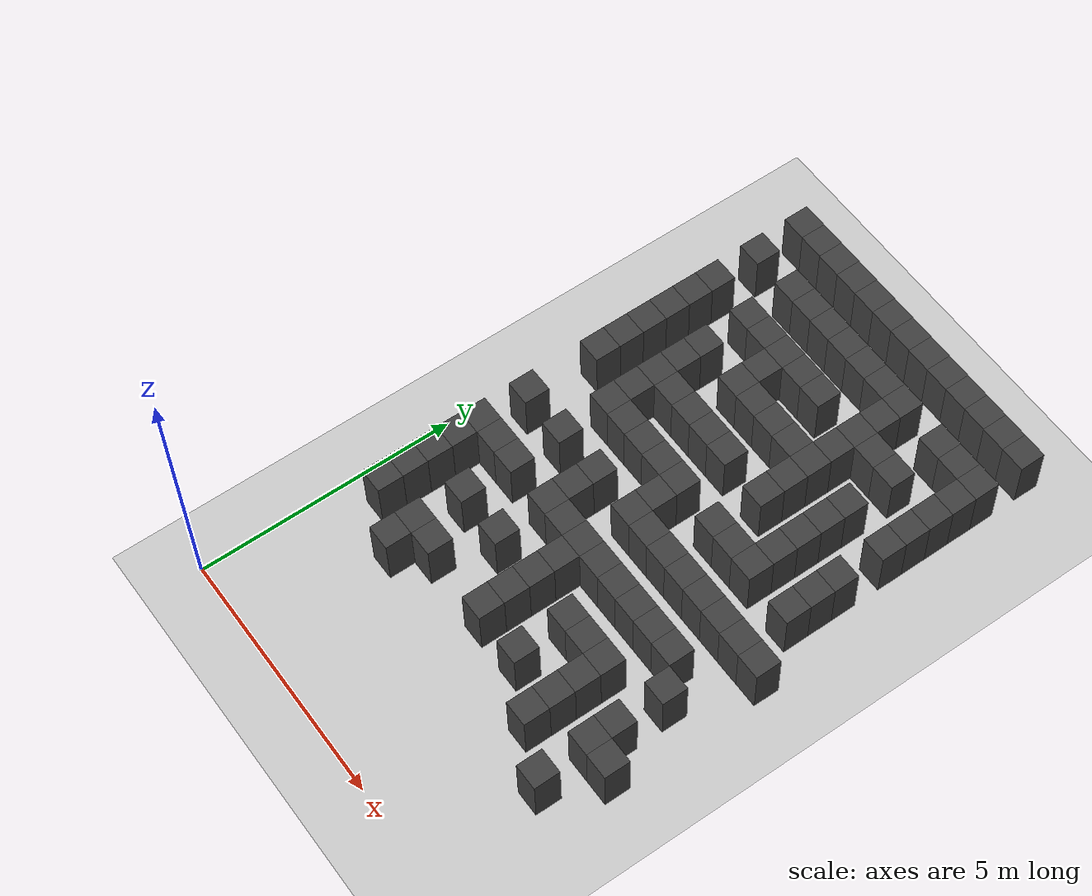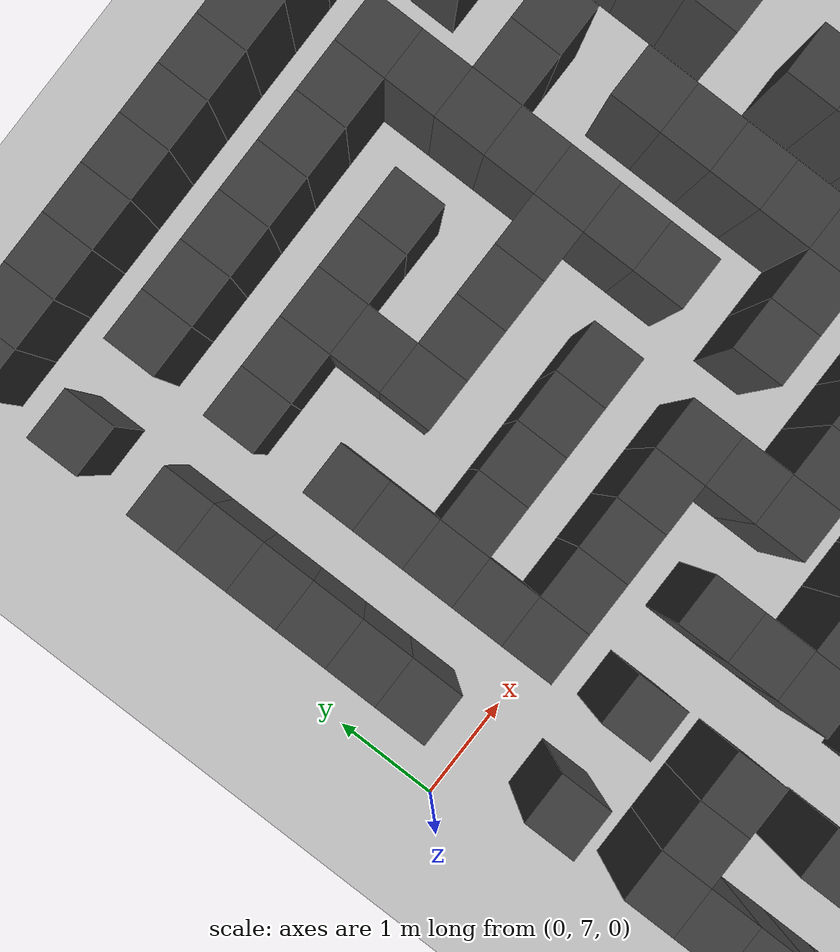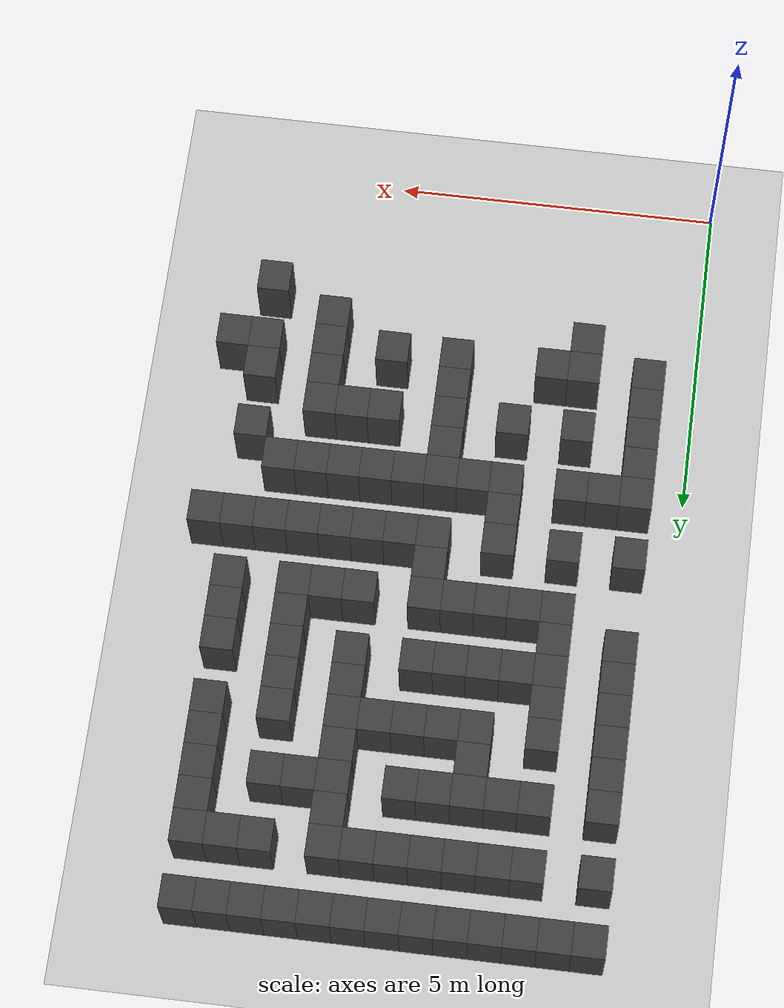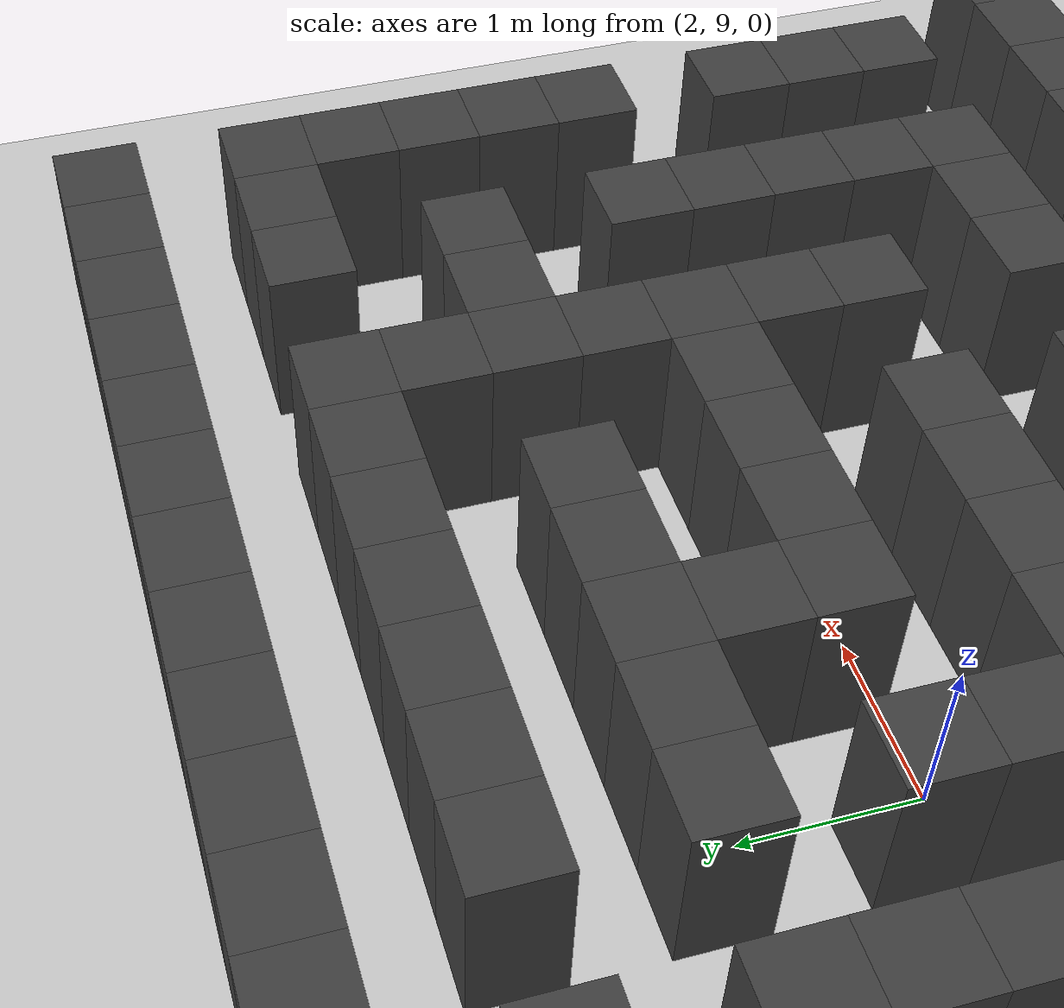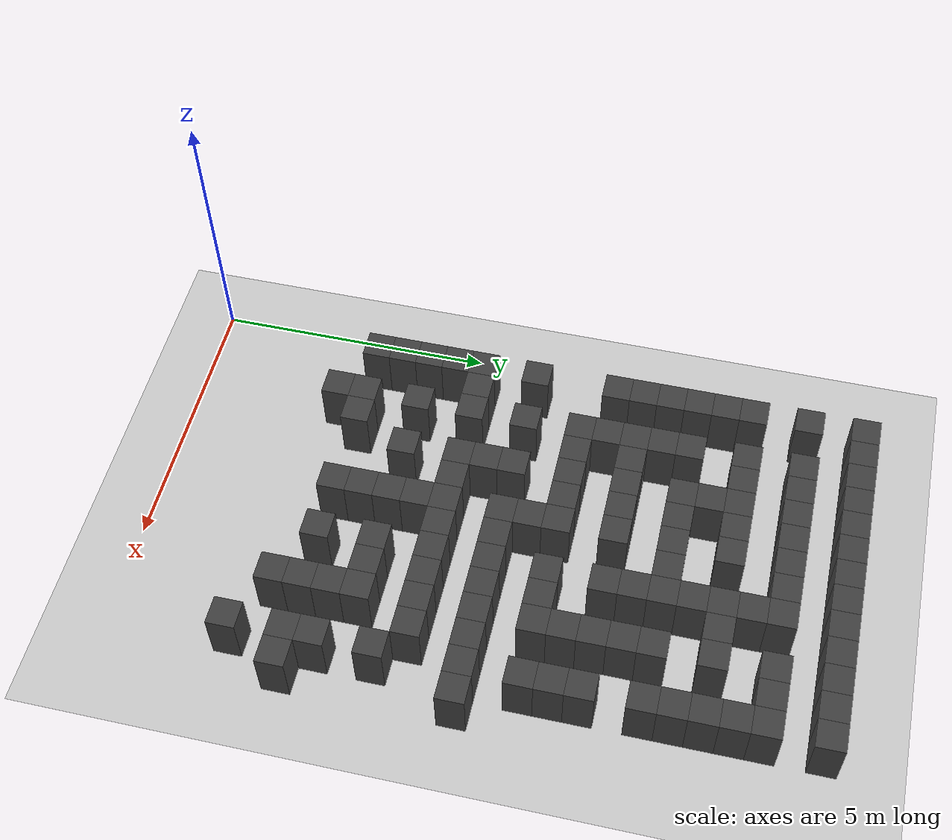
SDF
<sdf version="1.7">
 <world name="map_16271">
  <model name="ground_plane">
   <static>true</static>
   <link name="link">
    <collision name="collision">
     <geometry><plane><normal>0 0 1</normal><size>200 200</size></plane></geometry>
    </collision>
    <visual name="visual">
     <geometry><plane><normal>0 0 1</normal><size>200 200</size></plane></geometry>
     <material><ambient>0.8 0.8 0.8 1</ambient><diffuse>0.8 0.8 0.8 1</diffuse></material>
    </visual>
   </link>
  </model>
  <model name="maze_environment">
   <static>true</static>
   <link name="wall_26">
    <pose>0.750 12.250 0.500 0 0 0</pose>
    <collision name="col"><geometry><box><size>0.5 0.5 1.0</size></box></geometry></collision>
    <visual name="vis">
     <geometry><box><size>0.5 0.5 1.0</size></box></geometry>
     <material><ambient>0.15 0.15 0.15 1</ambient><diffuse>0.25 0.25 0.25 1</diffuse></material>
    </visual>
   </link>
   <link name="wall_27">
    <pose>1.250 12.250 0.500 0 0 0</pose>
    <collision name="col"><geometry><box><size>0.5 0.5 1.0</size></box></geometry></collision>
    <visual name="vis">
     <geometry><box><size>0.5 0.5 1.0</size></box></geometry>
     <material><ambient>0.15 0.15 0.15 1</ambient><diffuse>0.25 0.25 0.25 1</diffuse></material>
    </visual>
   </link>
   <link name="wall_28">
    <pose>1.750 12.250 0.500 0 0 0</pose>
    <collision name="col"><geometry><box><size>0.5 0.5 1.0</size></box></geometry></collision>
    <visual name="vis">
     <geometry><box><size>0.5 0.5 1.0</size></box></geometry>
     <material><ambient>0.15 0.15 0.15 1</ambient><diffuse>0.25 0.25 0.25 1</diffuse></material>
    </visual>
   </link>
   <link name="wall_29">
    <pose>2.250 12.250 0.500 0 0 0</pose>
    <collision name="col"><geometry><box><size>0.5 0.5 1.0</size></box></geometry></collision>
    <visual name="vis">
     <geometry><box><size>0.5 0.5 1.0</size></box></geometry>
     <material><ambient>0.15 0.15 0.15 1</ambient><diffuse>0.25 0.25 0.25 1</diffuse></material>
    </visual>
   </link>
   <link name="wall_30">
    <pose>2.750 12.250 0.500 0 0 0</pose>
    <collision name="col"><geometry><box><size>0.5 0.5 1.0</size></box></geometry></collision>
    <visual name="vis">
     <geometry><box><size>0.5 0.5 1.0</size></box></geometry>
     <material><ambient>0.15 0.15 0.15 1</ambient><diffuse>0.25 0.25 0.25 1</diffuse></material>
    </visual>
   </link>
   <link name="wall_31">
    <pose>3.250 12.250 0.500 0 0 0</pose>
    <collision name="col"><geometry><box><size>0.5 0.5 1.0</size></box></geometry></collision>
    <visual name="vis">
     <geometry><box><size>0.5 0.5 1.0</size></box></geometry>
     <material><ambient>0.15 0.15 0.15 1</ambient><diffuse>0.25 0.25 0.25 1</diffuse></material>
    </visual>
   </link>
   <link name="wall_32">
    <pose>3.750 12.250 0.500 0 0 0</pose>
    <collision name="col"><geometry><box><size>0.5 0.5 1.0</size></box></geometry></collision>
    <visual name="vis">
     <geometry><box><size>0.5 0.5 1.0</size></box></geometry>
     <material><ambient>0.15 0.15 0.15 1</ambient><diffuse>0.25 0.25 0.25 1</diffuse></material>
    </visual>
   </link>
   <link name="wall_33">
    <pose>4.250 12.250 0.500 0 0 0</pose>
    <collision name="col"><geometry><box><size>0.5 0.5 1.0</size></box></geometry></collision>
    <visual name="vis">
     <geometry><box><size>0.5 0.5 1.0</size></box></geometry>
     <material><ambient>0.15 0.15 0.15 1</ambient><diffuse>0.25 0.25 0.25 1</diffuse></material>
    </visual>
   </link>
   <link name="wall_34">
    <pose>4.750 12.250 0.500 0 0 0</pose>
    <collision name="col"><geometry><box><size>0.5 0.5 1.0</size></box></geometry></collision>
    <visual name="vis">
     <geometry><box><size>0.5 0.5 1.0</size></box></geometry>
     <material><ambient>0.15 0.15 0.15 1</ambient><diffuse>0.25 0.25 0.25 1</diffuse></material>
    </visual>
   </link>
   <link name="wall_35">
    <pose>5.250 12.250 0.500 0 0 0</pose>
    <collision name="col"><geometry><box><size>0.5 0.5 1.0</size></box></geometry></collision>
    <visual name="vis">
     <geometry><box><size>0.5 0.5 1.0</size></box></geometry>
     <material><ambient>0.15 0.15 0.15 1</ambient><diffuse>0.25 0.25 0.25 1</diffuse></material>
    </visual>
   </link>
   <link name="wall_36">
    <pose>5.750 12.250 0.500 0 0 0</pose>
    <collision name="col"><geometry><box><size>0.5 0.5 1.0</size></box></geometry></collision>
    <visual name="vis">
     <geometry><box><size>0.5 0.5 1.0</size></box></geometry>
     <material><ambient>0.15 0.15 0.15 1</ambient><diffuse>0.25 0.25 0.25 1</diffuse></material>
    </visual>
   </link>
   <link name="wall_37">
    <pose>6.250 12.250 0.500 0 0 0</pose>
    <collision name="col"><geometry><box><size>0.5 0.5 1.0</size></box></geometry></collision>
    <visual name="vis">
     <geometry><box><size>0.5 0.5 1.0</size></box></geometry>
     <material><ambient>0.15 0.15 0.15 1</ambient><diffuse>0.25 0.25 0.25 1</diffuse></material>
    </visual>
   </link>
   <link name="wall_38">
    <pose>6.750 12.250 0.500 0 0 0</pose>
    <collision name="col"><geometry><box><size>0.5 0.5 1.0</size></box></geometry></collision>
    <visual name="vis">
     <geometry><box><size>0.5 0.5 1.0</size></box></geometry>
     <material><ambient>0.15 0.15 0.15 1</ambient><diffuse>0.25 0.25 0.25 1</diffuse></material>
    </visual>
   </link>
   <link name="wall_77">
    <pose>0.750 11.250 0.500 0 0 0</pose>
    <collision name="col"><geometry><box><size>0.5 0.5 1.0</size></box></geometry></collision>
    <visual name="vis">
     <geometry><box><size>0.5 0.5 1.0</size></box></geometry>
     <material><ambient>0.15 0.15 0.15 1</ambient><diffuse>0.25 0.25 0.25 1</diffuse></material>
    </visual>
   </link>
   <link name="wall_78">
    <pose>1.750 11.250 0.500 0 0 0</pose>
    <collision name="col"><geometry><box><size>0.5 0.5 1.0</size></box></geometry></collision>
    <visual name="vis">
     <geometry><box><size>0.5 0.5 1.0</size></box></geometry>
     <material><ambient>0.15 0.15 0.15 1</ambient><diffuse>0.25 0.25 0.25 1</diffuse></material>
    </visual>
   </link>
   <link name="wall_79">
    <pose>2.250 11.250 0.500 0 0 0</pose>
    <collision name="col"><geometry><box><size>0.5 0.5 1.0</size></box></geometry></collision>
    <visual name="vis">
     <geometry><box><size>0.5 0.5 1.0</size></box></geometry>
     <material><ambient>0.15 0.15 0.15 1</ambient><diffuse>0.25 0.25 0.25 1</diffuse></material>
    </visual>
   </link>
   <link name="wall_80">
    <pose>2.750 11.250 0.500 0 0 0</pose>
    <collision name="col"><geometry><box><size>0.5 0.5 1.0</size></box></geometry></collision>
    <visual name="vis">
     <geometry><box><size>0.5 0.5 1.0</size></box></geometry>
     <material><ambient>0.15 0.15 0.15 1</ambient><diffuse>0.25 0.25 0.25 1</diffuse></material>
    </visual>
   </link>
   <link name="wall_81">
    <pose>3.250 11.250 0.500 0 0 0</pose>
    <collision name="col"><geometry><box><size>0.5 0.5 1.0</size></box></geometry></collision>
    <visual name="vis">
     <geometry><box><size>0.5 0.5 1.0</size></box></geometry>
     <material><ambient>0.15 0.15 0.15 1</ambient><diffuse>0.25 0.25 0.25 1</diffuse></material>
    </visual>
   </link>
   <link name="wall_82">
    <pose>3.750 11.250 0.500 0 0 0</pose>
    <collision name="col"><geometry><box><size>0.5 0.5 1.0</size></box></geometry></collision>
    <visual name="vis">
     <geometry><box><size>0.5 0.5 1.0</size></box></geometry>
     <material><ambient>0.15 0.15 0.15 1</ambient><diffuse>0.25 0.25 0.25 1</diffuse></material>
    </visual>
   </link>
   <link name="wall_83">
    <pose>4.250 11.250 0.500 0 0 0</pose>
    <collision name="col"><geometry><box><size>0.5 0.5 1.0</size></box></geometry></collision>
    <visual name="vis">
     <geometry><box><size>0.5 0.5 1.0</size></box></geometry>
     <material><ambient>0.15 0.15 0.15 1</ambient><diffuse>0.25 0.25 0.25 1</diffuse></material>
    </visual>
   </link>
   <link name="wall_84">
    <pose>4.750 11.250 0.500 0 0 0</pose>
    <collision name="col"><geometry><box><size>0.5 0.5 1.0</size></box></geometry></collision>
    <visual name="vis">
     <geometry><box><size>0.5 0.5 1.0</size></box></geometry>
     <material><ambient>0.15 0.15 0.15 1</ambient><diffuse>0.25 0.25 0.25 1</diffuse></material>
    </visual>
   </link>
   <link name="wall_85">
    <pose>5.750 11.250 0.500 0 0 0</pose>
    <collision name="col"><geometry><box><size>0.5 0.5 1.0</size></box></geometry></collision>
    <visual name="vis">
     <geometry><box><size>0.5 0.5 1.0</size></box></geometry>
     <material><ambient>0.15 0.15 0.15 1</ambient><diffuse>0.25 0.25 0.25 1</diffuse></material>
    </visual>
   </link>
   <link name="wall_86">
    <pose>6.250 11.250 0.500 0 0 0</pose>
    <collision name="col"><geometry><box><size>0.5 0.5 1.0</size></box></geometry></collision>
    <visual name="vis">
     <geometry><box><size>0.5 0.5 1.0</size></box></geometry>
     <material><ambient>0.15 0.15 0.15 1</ambient><diffuse>0.25 0.25 0.25 1</diffuse></material>
    </visual>
   </link>
   <link name="wall_87">
    <pose>6.750 11.250 0.500 0 0 0</pose>
    <collision name="col"><geometry><box><size>0.5 0.5 1.0</size></box></geometry></collision>
    <visual name="vis">
     <geometry><box><size>0.5 0.5 1.0</size></box></geometry>
     <material><ambient>0.15 0.15 0.15 1</ambient><diffuse>0.25 0.25 0.25 1</diffuse></material>
    </visual>
   </link>
   <link name="wall_100">
    <pose>4.750 10.750 0.500 0 0 0</pose>
    <collision name="col"><geometry><box><size>0.5 0.5 1.0</size></box></geometry></collision>
    <visual name="vis">
     <geometry><box><size>0.5 0.5 1.0</size></box></geometry>
     <material><ambient>0.15 0.15 0.15 1</ambient><diffuse>0.25 0.25 0.25 1</diffuse></material>
    </visual>
   </link>
   <link name="wall_101">
    <pose>6.750 10.750 0.500 0 0 0</pose>
    <collision name="col"><geometry><box><size>0.5 0.5 1.0</size></box></geometry></collision>
    <visual name="vis">
     <geometry><box><size>0.5 0.5 1.0</size></box></geometry>
     <material><ambient>0.15 0.15 0.15 1</ambient><diffuse>0.25 0.25 0.25 1</diffuse></material>
    </visual>
   </link>
   <link name="wall_129">
    <pose>0.750 10.250 0.500 0 0 0</pose>
    <collision name="col"><geometry><box><size>0.5 0.5 1.0</size></box></geometry></collision>
    <visual name="vis">
     <geometry><box><size>0.5 0.5 1.0</size></box></geometry>
     <material><ambient>0.15 0.15 0.15 1</ambient><diffuse>0.25 0.25 0.25 1</diffuse></material>
    </visual>
   </link>
   <link name="wall_130">
    <pose>1.750 10.250 0.500 0 0 0</pose>
    <collision name="col"><geometry><box><size>0.5 0.5 1.0</size></box></geometry></collision>
    <visual name="vis">
     <geometry><box><size>0.5 0.5 1.0</size></box></geometry>
     <material><ambient>0.15 0.15 0.15 1</ambient><diffuse>0.25 0.25 0.25 1</diffuse></material>
    </visual>
   </link>
   <link name="wall_131">
    <pose>2.250 10.250 0.500 0 0 0</pose>
    <collision name="col"><geometry><box><size>0.5 0.5 1.0</size></box></geometry></collision>
    <visual name="vis">
     <geometry><box><size>0.5 0.5 1.0</size></box></geometry>
     <material><ambient>0.15 0.15 0.15 1</ambient><diffuse>0.25 0.25 0.25 1</diffuse></material>
    </visual>
   </link>
   <link name="wall_132">
    <pose>2.750 10.250 0.500 0 0 0</pose>
    <collision name="col"><geometry><box><size>0.5 0.5 1.0</size></box></geometry></collision>
    <visual name="vis">
     <geometry><box><size>0.5 0.5 1.0</size></box></geometry>
     <material><ambient>0.15 0.15 0.15 1</ambient><diffuse>0.25 0.25 0.25 1</diffuse></material>
    </visual>
   </link>
   <link name="wall_133">
    <pose>3.250 10.250 0.500 0 0 0</pose>
    <collision name="col"><geometry><box><size>0.5 0.5 1.0</size></box></geometry></collision>
    <visual name="vis">
     <geometry><box><size>0.5 0.5 1.0</size></box></geometry>
     <material><ambient>0.15 0.15 0.15 1</ambient><diffuse>0.25 0.25 0.25 1</diffuse></material>
    </visual>
   </link>
   <link name="wall_134">
    <pose>3.750 10.250 0.500 0 0 0</pose>
    <collision name="col"><geometry><box><size>0.5 0.5 1.0</size></box></geometry></collision>
    <visual name="vis">
     <geometry><box><size>0.5 0.5 1.0</size></box></geometry>
     <material><ambient>0.15 0.15 0.15 1</ambient><diffuse>0.25 0.25 0.25 1</diffuse></material>
    </visual>
   </link>
   <link name="wall_135">
    <pose>4.750 10.250 0.500 0 0 0</pose>
    <collision name="col"><geometry><box><size>0.5 0.5 1.0</size></box></geometry></collision>
    <visual name="vis">
     <geometry><box><size>0.5 0.5 1.0</size></box></geometry>
     <material><ambient>0.15 0.15 0.15 1</ambient><diffuse>0.25 0.25 0.25 1</diffuse></material>
    </visual>
   </link>
   <link name="wall_136">
    <pose>5.250 10.250 0.500 0 0 0</pose>
    <collision name="col"><geometry><box><size>0.5 0.5 1.0</size></box></geometry></collision>
    <visual name="vis">
     <geometry><box><size>0.5 0.5 1.0</size></box></geometry>
     <material><ambient>0.15 0.15 0.15 1</ambient><diffuse>0.25 0.25 0.25 1</diffuse></material>
    </visual>
   </link>
   <link name="wall_137">
    <pose>5.750 10.250 0.500 0 0 0</pose>
    <collision name="col"><geometry><box><size>0.5 0.5 1.0</size></box></geometry></collision>
    <visual name="vis">
     <geometry><box><size>0.5 0.5 1.0</size></box></geometry>
     <material><ambient>0.15 0.15 0.15 1</ambient><diffuse>0.25 0.25 0.25 1</diffuse></material>
    </visual>
   </link>
   <link name="wall_138">
    <pose>6.750 10.250 0.500 0 0 0</pose>
    <collision name="col"><geometry><box><size>0.5 0.5 1.0</size></box></geometry></collision>
    <visual name="vis">
     <geometry><box><size>0.5 0.5 1.0</size></box></geometry>
     <material><ambient>0.15 0.15 0.15 1</ambient><diffuse>0.25 0.25 0.25 1</diffuse></material>
    </visual>
   </link>
   <link name="wall_152">
    <pose>0.750 9.750 0.500 0 0 0</pose>
    <collision name="col"><geometry><box><size>0.5 0.5 1.0</size></box></geometry></collision>
    <visual name="vis">
     <geometry><box><size>0.5 0.5 1.0</size></box></geometry>
     <material><ambient>0.15 0.15 0.15 1</ambient><diffuse>0.25 0.25 0.25 1</diffuse></material>
    </visual>
   </link>
   <link name="wall_153">
    <pose>2.750 9.750 0.500 0 0 0</pose>
    <collision name="col"><geometry><box><size>0.5 0.5 1.0</size></box></geometry></collision>
    <visual name="vis">
     <geometry><box><size>0.5 0.5 1.0</size></box></geometry>
     <material><ambient>0.15 0.15 0.15 1</ambient><diffuse>0.25 0.25 0.25 1</diffuse></material>
    </visual>
   </link>
   <link name="wall_154">
    <pose>4.750 9.750 0.500 0 0 0</pose>
    <collision name="col"><geometry><box><size>0.5 0.5 1.0</size></box></geometry></collision>
    <visual name="vis">
     <geometry><box><size>0.5 0.5 1.0</size></box></geometry>
     <material><ambient>0.15 0.15 0.15 1</ambient><diffuse>0.25 0.25 0.25 1</diffuse></material>
    </visual>
   </link>
   <link name="wall_155">
    <pose>6.750 9.750 0.500 0 0 0</pose>
    <collision name="col"><geometry><box><size>0.5 0.5 1.0</size></box></geometry></collision>
    <visual name="vis">
     <geometry><box><size>0.5 0.5 1.0</size></box></geometry>
     <material><ambient>0.15 0.15 0.15 1</ambient><diffuse>0.25 0.25 0.25 1</diffuse></material>
    </visual>
   </link>
   <link name="wall_175">
    <pose>0.750 9.250 0.500 0 0 0</pose>
    <collision name="col"><geometry><box><size>0.5 0.5 1.0</size></box></geometry></collision>
    <visual name="vis">
     <geometry><box><size>0.5 0.5 1.0</size></box></geometry>
     <material><ambient>0.15 0.15 0.15 1</ambient><diffuse>0.25 0.25 0.25 1</diffuse></material>
    </visual>
   </link>
   <link name="wall_176">
    <pose>1.750 9.250 0.500 0 0 0</pose>
    <collision name="col"><geometry><box><size>0.5 0.5 1.0</size></box></geometry></collision>
    <visual name="vis">
     <geometry><box><size>0.5 0.5 1.0</size></box></geometry>
     <material><ambient>0.15 0.15 0.15 1</ambient><diffuse>0.25 0.25 0.25 1</diffuse></material>
    </visual>
   </link>
   <link name="wall_177">
    <pose>2.750 9.250 0.500 0 0 0</pose>
    <collision name="col"><geometry><box><size>0.5 0.5 1.0</size></box></geometry></collision>
    <visual name="vis">
     <geometry><box><size>0.5 0.5 1.0</size></box></geometry>
     <material><ambient>0.15 0.15 0.15 1</ambient><diffuse>0.25 0.25 0.25 1</diffuse></material>
    </visual>
   </link>
   <link name="wall_178">
    <pose>3.250 9.250 0.500 0 0 0</pose>
    <collision name="col"><geometry><box><size>0.5 0.5 1.0</size></box></geometry></collision>
    <visual name="vis">
     <geometry><box><size>0.5 0.5 1.0</size></box></geometry>
     <material><ambient>0.15 0.15 0.15 1</ambient><diffuse>0.25 0.25 0.25 1</diffuse></material>
    </visual>
   </link>
   <link name="wall_179">
    <pose>3.750 9.250 0.500 0 0 0</pose>
    <collision name="col"><geometry><box><size>0.5 0.5 1.0</size></box></geometry></collision>
    <visual name="vis">
     <geometry><box><size>0.5 0.5 1.0</size></box></geometry>
     <material><ambient>0.15 0.15 0.15 1</ambient><diffuse>0.25 0.25 0.25 1</diffuse></material>
    </visual>
   </link>
   <link name="wall_180">
    <pose>4.250 9.250 0.500 0 0 0</pose>
    <collision name="col"><geometry><box><size>0.5 0.5 1.0</size></box></geometry></collision>
    <visual name="vis">
     <geometry><box><size>0.5 0.5 1.0</size></box></geometry>
     <material><ambient>0.15 0.15 0.15 1</ambient><diffuse>0.25 0.25 0.25 1</diffuse></material>
    </visual>
   </link>
   <link name="wall_181">
    <pose>4.750 9.250 0.500 0 0 0</pose>
    <collision name="col"><geometry><box><size>0.5 0.5 1.0</size></box></geometry></collision>
    <visual name="vis">
     <geometry><box><size>0.5 0.5 1.0</size></box></geometry>
     <material><ambient>0.15 0.15 0.15 1</ambient><diffuse>0.25 0.25 0.25 1</diffuse></material>
    </visual>
   </link>
   <link name="wall_182">
    <pose>5.750 9.250 0.500 0 0 0</pose>
    <collision name="col"><geometry><box><size>0.5 0.5 1.0</size></box></geometry></collision>
    <visual name="vis">
     <geometry><box><size>0.5 0.5 1.0</size></box></geometry>
     <material><ambient>0.15 0.15 0.15 1</ambient><diffuse>0.25 0.25 0.25 1</diffuse></material>
    </visual>
   </link>
   <link name="wall_183">
    <pose>6.750 9.250 0.500 0 0 0</pose>
    <collision name="col"><geometry><box><size>0.5 0.5 1.0</size></box></geometry></collision>
    <visual name="vis">
     <geometry><box><size>0.5 0.5 1.0</size></box></geometry>
     <material><ambient>0.15 0.15 0.15 1</ambient><diffuse>0.25 0.25 0.25 1</diffuse></material>
    </visual>
   </link>
   <link name="wall_198">
    <pose>0.750 8.750 0.500 0 0 0</pose>
    <collision name="col"><geometry><box><size>0.5 0.5 1.0</size></box></geometry></collision>
    <visual name="vis">
     <geometry><box><size>0.5 0.5 1.0</size></box></geometry>
     <material><ambient>0.15 0.15 0.15 1</ambient><diffuse>0.25 0.25 0.25 1</diffuse></material>
    </visual>
   </link>
   <link name="wall_199">
    <pose>1.750 8.750 0.500 0 0 0</pose>
    <collision name="col"><geometry><box><size>0.5 0.5 1.0</size></box></geometry></collision>
    <visual name="vis">
     <geometry><box><size>0.5 0.5 1.0</size></box></geometry>
     <material><ambient>0.15 0.15 0.15 1</ambient><diffuse>0.25 0.25 0.25 1</diffuse></material>
    </visual>
   </link>
   <link name="wall_200">
    <pose>4.750 8.750 0.500 0 0 0</pose>
    <collision name="col"><geometry><box><size>0.5 0.5 1.0</size></box></geometry></collision>
    <visual name="vis">
     <geometry><box><size>0.5 0.5 1.0</size></box></geometry>
     <material><ambient>0.15 0.15 0.15 1</ambient><diffuse>0.25 0.25 0.25 1</diffuse></material>
    </visual>
   </link>
   <link name="wall_201">
    <pose>5.750 8.750 0.500 0 0 0</pose>
    <collision name="col"><geometry><box><size>0.5 0.5 1.0</size></box></geometry></collision>
    <visual name="vis">
     <geometry><box><size>0.5 0.5 1.0</size></box></geometry>
     <material><ambient>0.15 0.15 0.15 1</ambient><diffuse>0.25 0.25 0.25 1</diffuse></material>
    </visual>
   </link>
   <link name="wall_221">
    <pose>0.750 8.250 0.500 0 0 0</pose>
    <collision name="col"><geometry><box><size>0.5 0.5 1.0</size></box></geometry></collision>
    <visual name="vis">
     <geometry><box><size>0.5 0.5 1.0</size></box></geometry>
     <material><ambient>0.15 0.15 0.15 1</ambient><diffuse>0.25 0.25 0.25 1</diffuse></material>
    </visual>
   </link>
   <link name="wall_222">
    <pose>1.750 8.250 0.500 0 0 0</pose>
    <collision name="col"><geometry><box><size>0.5 0.5 1.0</size></box></geometry></collision>
    <visual name="vis">
     <geometry><box><size>0.5 0.5 1.0</size></box></geometry>
     <material><ambient>0.15 0.15 0.15 1</ambient><diffuse>0.25 0.25 0.25 1</diffuse></material>
    </visual>
   </link>
   <link name="wall_223">
    <pose>2.250 8.250 0.500 0 0 0</pose>
    <collision name="col"><geometry><box><size>0.5 0.5 1.0</size></box></geometry></collision>
    <visual name="vis">
     <geometry><box><size>0.5 0.5 1.0</size></box></geometry>
     <material><ambient>0.15 0.15 0.15 1</ambient><diffuse>0.25 0.25 0.25 1</diffuse></material>
    </visual>
   </link>
   <link name="wall_224">
    <pose>2.750 8.250 0.500 0 0 0</pose>
    <collision name="col"><geometry><box><size>0.5 0.5 1.0</size></box></geometry></collision>
    <visual name="vis">
     <geometry><box><size>0.5 0.5 1.0</size></box></geometry>
     <material><ambient>0.15 0.15 0.15 1</ambient><diffuse>0.25 0.25 0.25 1</diffuse></material>
    </visual>
   </link>
   <link name="wall_225">
    <pose>3.250 8.250 0.500 0 0 0</pose>
    <collision name="col"><geometry><box><size>0.5 0.5 1.0</size></box></geometry></collision>
    <visual name="vis">
     <geometry><box><size>0.5 0.5 1.0</size></box></geometry>
     <material><ambient>0.15 0.15 0.15 1</ambient><diffuse>0.25 0.25 0.25 1</diffuse></material>
    </visual>
   </link>
   <link name="wall_226">
    <pose>3.750 8.250 0.500 0 0 0</pose>
    <collision name="col"><geometry><box><size>0.5 0.5 1.0</size></box></geometry></collision>
    <visual name="vis">
     <geometry><box><size>0.5 0.5 1.0</size></box></geometry>
     <material><ambient>0.15 0.15 0.15 1</ambient><diffuse>0.25 0.25 0.25 1</diffuse></material>
    </visual>
   </link>
   <link name="wall_227">
    <pose>4.750 8.250 0.500 0 0 0</pose>
    <collision name="col"><geometry><box><size>0.5 0.5 1.0</size></box></geometry></collision>
    <visual name="vis">
     <geometry><box><size>0.5 0.5 1.0</size></box></geometry>
     <material><ambient>0.15 0.15 0.15 1</ambient><diffuse>0.25 0.25 0.25 1</diffuse></material>
    </visual>
   </link>
   <link name="wall_228">
    <pose>5.750 8.250 0.500 0 0 0</pose>
    <collision name="col"><geometry><box><size>0.5 0.5 1.0</size></box></geometry></collision>
    <visual name="vis">
     <geometry><box><size>0.5 0.5 1.0</size></box></geometry>
     <material><ambient>0.15 0.15 0.15 1</ambient><diffuse>0.25 0.25 0.25 1</diffuse></material>
    </visual>
   </link>
   <link name="wall_229">
    <pose>6.750 8.250 0.500 0 0 0</pose>
    <collision name="col"><geometry><box><size>0.5 0.5 1.0</size></box></geometry></collision>
    <visual name="vis">
     <geometry><box><size>0.5 0.5 1.0</size></box></geometry>
     <material><ambient>0.15 0.15 0.15 1</ambient><diffuse>0.25 0.25 0.25 1</diffuse></material>
    </visual>
   </link>
   <link name="wall_244">
    <pose>0.750 7.750 0.500 0 0 0</pose>
    <collision name="col"><geometry><box><size>0.5 0.5 1.0</size></box></geometry></collision>
    <visual name="vis">
     <geometry><box><size>0.5 0.5 1.0</size></box></geometry>
     <material><ambient>0.15 0.15 0.15 1</ambient><diffuse>0.25 0.25 0.25 1</diffuse></material>
    </visual>
   </link>
   <link name="wall_245">
    <pose>1.750 7.750 0.500 0 0 0</pose>
    <collision name="col"><geometry><box><size>0.5 0.5 1.0</size></box></geometry></collision>
    <visual name="vis">
     <geometry><box><size>0.5 0.5 1.0</size></box></geometry>
     <material><ambient>0.15 0.15 0.15 1</ambient><diffuse>0.25 0.25 0.25 1</diffuse></material>
    </visual>
   </link>
   <link name="wall_246">
    <pose>5.750 7.750 0.500 0 0 0</pose>
    <collision name="col"><geometry><box><size>0.5 0.5 1.0</size></box></geometry></collision>
    <visual name="vis">
     <geometry><box><size>0.5 0.5 1.0</size></box></geometry>
     <material><ambient>0.15 0.15 0.15 1</ambient><diffuse>0.25 0.25 0.25 1</diffuse></material>
    </visual>
   </link>
   <link name="wall_247">
    <pose>6.750 7.750 0.500 0 0 0</pose>
    <collision name="col"><geometry><box><size>0.5 0.5 1.0</size></box></geometry></collision>
    <visual name="vis">
     <geometry><box><size>0.5 0.5 1.0</size></box></geometry>
     <material><ambient>0.15 0.15 0.15 1</ambient><diffuse>0.25 0.25 0.25 1</diffuse></material>
    </visual>
   </link>
   <link name="wall_269">
    <pose>1.750 7.250 0.500 0 0 0</pose>
    <collision name="col"><geometry><box><size>0.5 0.5 1.0</size></box></geometry></collision>
    <visual name="vis">
     <geometry><box><size>0.5 0.5 1.0</size></box></geometry>
     <material><ambient>0.15 0.15 0.15 1</ambient><diffuse>0.25 0.25 0.25 1</diffuse></material>
    </visual>
   </link>
   <link name="wall_270">
    <pose>2.250 7.250 0.500 0 0 0</pose>
    <collision name="col"><geometry><box><size>0.5 0.5 1.0</size></box></geometry></collision>
    <visual name="vis">
     <geometry><box><size>0.5 0.5 1.0</size></box></geometry>
     <material><ambient>0.15 0.15 0.15 1</ambient><diffuse>0.25 0.25 0.25 1</diffuse></material>
    </visual>
   </link>
   <link name="wall_271">
    <pose>2.750 7.250 0.500 0 0 0</pose>
    <collision name="col"><geometry><box><size>0.5 0.5 1.0</size></box></geometry></collision>
    <visual name="vis">
     <geometry><box><size>0.5 0.5 1.0</size></box></geometry>
     <material><ambient>0.15 0.15 0.15 1</ambient><diffuse>0.25 0.25 0.25 1</diffuse></material>
    </visual>
   </link>
   <link name="wall_272">
    <pose>3.250 7.250 0.500 0 0 0</pose>
    <collision name="col"><geometry><box><size>0.5 0.5 1.0</size></box></geometry></collision>
    <visual name="vis">
     <geometry><box><size>0.5 0.5 1.0</size></box></geometry>
     <material><ambient>0.15 0.15 0.15 1</ambient><diffuse>0.25 0.25 0.25 1</diffuse></material>
    </visual>
   </link>
   <link name="wall_273">
    <pose>3.750 7.250 0.500 0 0 0</pose>
    <collision name="col"><geometry><box><size>0.5 0.5 1.0</size></box></geometry></collision>
    <visual name="vis">
     <geometry><box><size>0.5 0.5 1.0</size></box></geometry>
     <material><ambient>0.15 0.15 0.15 1</ambient><diffuse>0.25 0.25 0.25 1</diffuse></material>
    </visual>
   </link>
   <link name="wall_274">
    <pose>4.750 7.250 0.500 0 0 0</pose>
    <collision name="col"><geometry><box><size>0.5 0.5 1.0</size></box></geometry></collision>
    <visual name="vis">
     <geometry><box><size>0.5 0.5 1.0</size></box></geometry>
     <material><ambient>0.15 0.15 0.15 1</ambient><diffuse>0.25 0.25 0.25 1</diffuse></material>
    </visual>
   </link>
   <link name="wall_275">
    <pose>5.250 7.250 0.500 0 0 0</pose>
    <collision name="col"><geometry><box><size>0.5 0.5 1.0</size></box></geometry></collision>
    <visual name="vis">
     <geometry><box><size>0.5 0.5 1.0</size></box></geometry>
     <material><ambient>0.15 0.15 0.15 1</ambient><diffuse>0.25 0.25 0.25 1</diffuse></material>
    </visual>
   </link>
   <link name="wall_276">
    <pose>5.750 7.250 0.500 0 0 0</pose>
    <collision name="col"><geometry><box><size>0.5 0.5 1.0</size></box></geometry></collision>
    <visual name="vis">
     <geometry><box><size>0.5 0.5 1.0</size></box></geometry>
     <material><ambient>0.15 0.15 0.15 1</ambient><diffuse>0.25 0.25 0.25 1</diffuse></material>
    </visual>
   </link>
   <link name="wall_277">
    <pose>6.750 7.250 0.500 0 0 0</pose>
    <collision name="col"><geometry><box><size>0.5 0.5 1.0</size></box></geometry></collision>
    <visual name="vis">
     <geometry><box><size>0.5 0.5 1.0</size></box></geometry>
     <material><ambient>0.15 0.15 0.15 1</ambient><diffuse>0.25 0.25 0.25 1</diffuse></material>
    </visual>
   </link>
   <link name="wall_291">
    <pose>3.750 6.750 0.500 0 0 0</pose>
    <collision name="col"><geometry><box><size>0.5 0.5 1.0</size></box></geometry></collision>
    <visual name="vis">
     <geometry><box><size>0.5 0.5 1.0</size></box></geometry>
     <material><ambient>0.15 0.15 0.15 1</ambient><diffuse>0.25 0.25 0.25 1</diffuse></material>
    </visual>
   </link>
   <link name="wall_314">
    <pose>0.750 6.250 0.500 0 0 0</pose>
    <collision name="col"><geometry><box><size>0.5 0.5 1.0</size></box></geometry></collision>
    <visual name="vis">
     <geometry><box><size>0.5 0.5 1.0</size></box></geometry>
     <material><ambient>0.15 0.15 0.15 1</ambient><diffuse>0.25 0.25 0.25 1</diffuse></material>
    </visual>
   </link>
   <link name="wall_315">
    <pose>1.750 6.250 0.500 0 0 0</pose>
    <collision name="col"><geometry><box><size>0.5 0.5 1.0</size></box></geometry></collision>
    <visual name="vis">
     <geometry><box><size>0.5 0.5 1.0</size></box></geometry>
     <material><ambient>0.15 0.15 0.15 1</ambient><diffuse>0.25 0.25 0.25 1</diffuse></material>
    </visual>
   </link>
   <link name="wall_316">
    <pose>2.750 6.250 0.500 0 0 0</pose>
    <collision name="col"><geometry><box><size>0.5 0.5 1.0</size></box></geometry></collision>
    <visual name="vis">
     <geometry><box><size>0.5 0.5 1.0</size></box></geometry>
     <material><ambient>0.15 0.15 0.15 1</ambient><diffuse>0.25 0.25 0.25 1</diffuse></material>
    </visual>
   </link>
   <link name="wall_317">
    <pose>3.750 6.250 0.500 0 0 0</pose>
    <collision name="col"><geometry><box><size>0.5 0.5 1.0</size></box></geometry></collision>
    <visual name="vis">
     <geometry><box><size>0.5 0.5 1.0</size></box></geometry>
     <material><ambient>0.15 0.15 0.15 1</ambient><diffuse>0.25 0.25 0.25 1</diffuse></material>
    </visual>
   </link>
   <link name="wall_318">
    <pose>4.250 6.250 0.500 0 0 0</pose>
    <collision name="col"><geometry><box><size>0.5 0.5 1.0</size></box></geometry></collision>
    <visual name="vis">
     <geometry><box><size>0.5 0.5 1.0</size></box></geometry>
     <material><ambient>0.15 0.15 0.15 1</ambient><diffuse>0.25 0.25 0.25 1</diffuse></material>
    </visual>
   </link>
   <link name="wall_319">
    <pose>4.750 6.250 0.500 0 0 0</pose>
    <collision name="col"><geometry><box><size>0.5 0.5 1.0</size></box></geometry></collision>
    <visual name="vis">
     <geometry><box><size>0.5 0.5 1.0</size></box></geometry>
     <material><ambient>0.15 0.15 0.15 1</ambient><diffuse>0.25 0.25 0.25 1</diffuse></material>
    </visual>
   </link>
   <link name="wall_320">
    <pose>5.250 6.250 0.500 0 0 0</pose>
    <collision name="col"><geometry><box><size>0.5 0.5 1.0</size></box></geometry></collision>
    <visual name="vis">
     <geometry><box><size>0.5 0.5 1.0</size></box></geometry>
     <material><ambient>0.15 0.15 0.15 1</ambient><diffuse>0.25 0.25 0.25 1</diffuse></material>
    </visual>
   </link>
   <link name="wall_321">
    <pose>5.750 6.250 0.500 0 0 0</pose>
    <collision name="col"><geometry><box><size>0.5 0.5 1.0</size></box></geometry></collision>
    <visual name="vis">
     <geometry><box><size>0.5 0.5 1.0</size></box></geometry>
     <material><ambient>0.15 0.15 0.15 1</ambient><diffuse>0.25 0.25 0.25 1</diffuse></material>
    </visual>
   </link>
   <link name="wall_322">
    <pose>6.250 6.250 0.500 0 0 0</pose>
    <collision name="col"><geometry><box><size>0.5 0.5 1.0</size></box></geometry></collision>
    <visual name="vis">
     <geometry><box><size>0.5 0.5 1.0</size></box></geometry>
     <material><ambient>0.15 0.15 0.15 1</ambient><diffuse>0.25 0.25 0.25 1</diffuse></material>
    </visual>
   </link>
   <link name="wall_323">
    <pose>6.750 6.250 0.500 0 0 0</pose>
    <collision name="col"><geometry><box><size>0.5 0.5 1.0</size></box></geometry></collision>
    <visual name="vis">
     <geometry><box><size>0.5 0.5 1.0</size></box></geometry>
     <material><ambient>0.15 0.15 0.15 1</ambient><diffuse>0.25 0.25 0.25 1</diffuse></material>
    </visual>
   </link>
   <link name="wall_324">
    <pose>7.250 6.250 0.500 0 0 0</pose>
    <collision name="col"><geometry><box><size>0.5 0.5 1.0</size></box></geometry></collision>
    <visual name="vis">
     <geometry><box><size>0.5 0.5 1.0</size></box></geometry>
     <material><ambient>0.15 0.15 0.15 1</ambient><diffuse>0.25 0.25 0.25 1</diffuse></material>
    </visual>
   </link>
   <link name="wall_338">
    <pose>2.750 5.750 0.500 0 0 0</pose>
    <collision name="col"><geometry><box><size>0.5 0.5 1.0</size></box></geometry></collision>
    <visual name="vis">
     <geometry><box><size>0.5 0.5 1.0</size></box></geometry>
     <material><ambient>0.15 0.15 0.15 1</ambient><diffuse>0.25 0.25 0.25 1</diffuse></material>
    </visual>
   </link>
   <link name="wall_363">
    <pose>0.750 5.250 0.500 0 0 0</pose>
    <collision name="col"><geometry><box><size>0.5 0.5 1.0</size></box></geometry></collision>
    <visual name="vis">
     <geometry><box><size>0.5 0.5 1.0</size></box></geometry>
     <material><ambient>0.15 0.15 0.15 1</ambient><diffuse>0.25 0.25 0.25 1</diffuse></material>
    </visual>
   </link>
   <link name="wall_364">
    <pose>1.250 5.250 0.500 0 0 0</pose>
    <collision name="col"><geometry><box><size>0.5 0.5 1.0</size></box></geometry></collision>
    <visual name="vis">
     <geometry><box><size>0.5 0.5 1.0</size></box></geometry>
     <material><ambient>0.15 0.15 0.15 1</ambient><diffuse>0.25 0.25 0.25 1</diffuse></material>
    </visual>
   </link>
   <link name="wall_365">
    <pose>1.750 5.250 0.500 0 0 0</pose>
    <collision name="col"><geometry><box><size>0.5 0.5 1.0</size></box></geometry></collision>
    <visual name="vis">
     <geometry><box><size>0.5 0.5 1.0</size></box></geometry>
     <material><ambient>0.15 0.15 0.15 1</ambient><diffuse>0.25 0.25 0.25 1</diffuse></material>
    </visual>
   </link>
   <link name="wall_366">
    <pose>2.750 5.250 0.500 0 0 0</pose>
    <collision name="col"><geometry><box><size>0.5 0.5 1.0</size></box></geometry></collision>
    <visual name="vis">
     <geometry><box><size>0.5 0.5 1.0</size></box></geometry>
     <material><ambient>0.15 0.15 0.15 1</ambient><diffuse>0.25 0.25 0.25 1</diffuse></material>
    </visual>
   </link>
   <link name="wall_367">
    <pose>3.250 5.250 0.500 0 0 0</pose>
    <collision name="col"><geometry><box><size>0.5 0.5 1.0</size></box></geometry></collision>
    <visual name="vis">
     <geometry><box><size>0.5 0.5 1.0</size></box></geometry>
     <material><ambient>0.15 0.15 0.15 1</ambient><diffuse>0.25 0.25 0.25 1</diffuse></material>
    </visual>
   </link>
   <link name="wall_368">
    <pose>3.750 5.250 0.500 0 0 0</pose>
    <collision name="col"><geometry><box><size>0.5 0.5 1.0</size></box></geometry></collision>
    <visual name="vis">
     <geometry><box><size>0.5 0.5 1.0</size></box></geometry>
     <material><ambient>0.15 0.15 0.15 1</ambient><diffuse>0.25 0.25 0.25 1</diffuse></material>
    </visual>
   </link>
   <link name="wall_369">
    <pose>4.250 5.250 0.500 0 0 0</pose>
    <collision name="col"><geometry><box><size>0.5 0.5 1.0</size></box></geometry></collision>
    <visual name="vis">
     <geometry><box><size>0.5 0.5 1.0</size></box></geometry>
     <material><ambient>0.15 0.15 0.15 1</ambient><diffuse>0.25 0.25 0.25 1</diffuse></material>
    </visual>
   </link>
   <link name="wall_370">
    <pose>4.750 5.250 0.500 0 0 0</pose>
    <collision name="col"><geometry><box><size>0.5 0.5 1.0</size></box></geometry></collision>
    <visual name="vis">
     <geometry><box><size>0.5 0.5 1.0</size></box></geometry>
     <material><ambient>0.15 0.15 0.15 1</ambient><diffuse>0.25 0.25 0.25 1</diffuse></material>
    </visual>
   </link>
   <link name="wall_371">
    <pose>5.250 5.250 0.500 0 0 0</pose>
    <collision name="col"><geometry><box><size>0.5 0.5 1.0</size></box></geometry></collision>
    <visual name="vis">
     <geometry><box><size>0.5 0.5 1.0</size></box></geometry>
     <material><ambient>0.15 0.15 0.15 1</ambient><diffuse>0.25 0.25 0.25 1</diffuse></material>
    </visual>
   </link>
   <link name="wall_372">
    <pose>5.750 5.250 0.500 0 0 0</pose>
    <collision name="col"><geometry><box><size>0.5 0.5 1.0</size></box></geometry></collision>
    <visual name="vis">
     <geometry><box><size>0.5 0.5 1.0</size></box></geometry>
     <material><ambient>0.15 0.15 0.15 1</ambient><diffuse>0.25 0.25 0.25 1</diffuse></material>
    </visual>
   </link>
   <link name="wall_373">
    <pose>6.250 5.250 0.500 0 0 0</pose>
    <collision name="col"><geometry><box><size>0.5 0.5 1.0</size></box></geometry></collision>
    <visual name="vis">
     <geometry><box><size>0.5 0.5 1.0</size></box></geometry>
     <material><ambient>0.15 0.15 0.15 1</ambient><diffuse>0.25 0.25 0.25 1</diffuse></material>
    </visual>
   </link>
   <link name="wall_386">
    <pose>0.750 4.750 0.500 0 0 0</pose>
    <collision name="col"><geometry><box><size>0.5 0.5 1.0</size></box></geometry></collision>
    <visual name="vis">
     <geometry><box><size>0.5 0.5 1.0</size></box></geometry>
     <material><ambient>0.15 0.15 0.15 1</ambient><diffuse>0.25 0.25 0.25 1</diffuse></material>
    </visual>
   </link>
   <link name="wall_387">
    <pose>3.750 4.750 0.500 0 0 0</pose>
    <collision name="col"><geometry><box><size>0.5 0.5 1.0</size></box></geometry></collision>
    <visual name="vis">
     <geometry><box><size>0.5 0.5 1.0</size></box></geometry>
     <material><ambient>0.15 0.15 0.15 1</ambient><diffuse>0.25 0.25 0.25 1</diffuse></material>
    </visual>
   </link>
   <link name="wall_388">
    <pose>6.750 4.750 0.500 0 0 0</pose>
    <collision name="col"><geometry><box><size>0.5 0.5 1.0</size></box></geometry></collision>
    <visual name="vis">
     <geometry><box><size>0.5 0.5 1.0</size></box></geometry>
     <material><ambient>0.15 0.15 0.15 1</ambient><diffuse>0.25 0.25 0.25 1</diffuse></material>
    </visual>
   </link>
   <link name="wall_412">
    <pose>0.750 4.250 0.500 0 0 0</pose>
    <collision name="col"><geometry><box><size>0.5 0.5 1.0</size></box></geometry></collision>
    <visual name="vis">
     <geometry><box><size>0.5 0.5 1.0</size></box></geometry>
     <material><ambient>0.15 0.15 0.15 1</ambient><diffuse>0.25 0.25 0.25 1</diffuse></material>
    </visual>
   </link>
   <link name="wall_413">
    <pose>1.750 4.250 0.500 0 0 0</pose>
    <collision name="col"><geometry><box><size>0.5 0.5 1.0</size></box></geometry></collision>
    <visual name="vis">
     <geometry><box><size>0.5 0.5 1.0</size></box></geometry>
     <material><ambient>0.15 0.15 0.15 1</ambient><diffuse>0.25 0.25 0.25 1</diffuse></material>
    </visual>
   </link>
   <link name="wall_414">
    <pose>2.750 4.250 0.500 0 0 0</pose>
    <collision name="col"><geometry><box><size>0.5 0.5 1.0</size></box></geometry></collision>
    <visual name="vis">
     <geometry><box><size>0.5 0.5 1.0</size></box></geometry>
     <material><ambient>0.15 0.15 0.15 1</ambient><diffuse>0.25 0.25 0.25 1</diffuse></material>
    </visual>
   </link>
   <link name="wall_415">
    <pose>3.750 4.250 0.500 0 0 0</pose>
    <collision name="col"><geometry><box><size>0.5 0.5 1.0</size></box></geometry></collision>
    <visual name="vis">
     <geometry><box><size>0.5 0.5 1.0</size></box></geometry>
     <material><ambient>0.15 0.15 0.15 1</ambient><diffuse>0.25 0.25 0.25 1</diffuse></material>
    </visual>
   </link>
   <link name="wall_416">
    <pose>4.750 4.250 0.500 0 0 0</pose>
    <collision name="col"><geometry><box><size>0.5 0.5 1.0</size></box></geometry></collision>
    <visual name="vis">
     <geometry><box><size>0.5 0.5 1.0</size></box></geometry>
     <material><ambient>0.15 0.15 0.15 1</ambient><diffuse>0.25 0.25 0.25 1</diffuse></material>
    </visual>
   </link>
   <link name="wall_417">
    <pose>5.250 4.250 0.500 0 0 0</pose>
    <collision name="col"><geometry><box><size>0.5 0.5 1.0</size></box></geometry></collision>
    <visual name="vis">
     <geometry><box><size>0.5 0.5 1.0</size></box></geometry>
     <material><ambient>0.15 0.15 0.15 1</ambient><diffuse>0.25 0.25 0.25 1</diffuse></material>
    </visual>
   </link>
   <link name="wall_418">
    <pose>5.750 4.250 0.500 0 0 0</pose>
    <collision name="col"><geometry><box><size>0.5 0.5 1.0</size></box></geometry></collision>
    <visual name="vis">
     <geometry><box><size>0.5 0.5 1.0</size></box></geometry>
     <material><ambient>0.15 0.15 0.15 1</ambient><diffuse>0.25 0.25 0.25 1</diffuse></material>
    </visual>
   </link>
   <link name="wall_433">
    <pose>0.750 3.750 0.500 0 0 0</pose>
    <collision name="col"><geometry><box><size>0.5 0.5 1.0</size></box></geometry></collision>
    <visual name="vis">
     <geometry><box><size>0.5 0.5 1.0</size></box></geometry>
     <material><ambient>0.15 0.15 0.15 1</ambient><diffuse>0.25 0.25 0.25 1</diffuse></material>
    </visual>
   </link>
   <link name="wall_434">
    <pose>3.750 3.750 0.500 0 0 0</pose>
    <collision name="col"><geometry><box><size>0.5 0.5 1.0</size></box></geometry></collision>
    <visual name="vis">
     <geometry><box><size>0.5 0.5 1.0</size></box></geometry>
     <material><ambient>0.15 0.15 0.15 1</ambient><diffuse>0.25 0.25 0.25 1</diffuse></material>
    </visual>
   </link>
   <link name="wall_435">
    <pose>5.750 3.750 0.500 0 0 0</pose>
    <collision name="col"><geometry><box><size>0.5 0.5 1.0</size></box></geometry></collision>
    <visual name="vis">
     <geometry><box><size>0.5 0.5 1.0</size></box></geometry>
     <material><ambient>0.15 0.15 0.15 1</ambient><diffuse>0.25 0.25 0.25 1</diffuse></material>
    </visual>
   </link>
   <link name="wall_436">
    <pose>6.750 3.750 0.500 0 0 0</pose>
    <collision name="col"><geometry><box><size>0.5 0.5 1.0</size></box></geometry></collision>
    <visual name="vis">
     <geometry><box><size>0.5 0.5 1.0</size></box></geometry>
     <material><ambient>0.15 0.15 0.15 1</ambient><diffuse>0.25 0.25 0.25 1</diffuse></material>
    </visual>
   </link>
   <link name="wall_459">
    <pose>0.750 3.250 0.500 0 0 0</pose>
    <collision name="col"><geometry><box><size>0.5 0.5 1.0</size></box></geometry></collision>
    <visual name="vis">
     <geometry><box><size>0.5 0.5 1.0</size></box></geometry>
     <material><ambient>0.15 0.15 0.15 1</ambient><diffuse>0.25 0.25 0.25 1</diffuse></material>
    </visual>
   </link>
   <link name="wall_460">
    <pose>1.750 3.250 0.500 0 0 0</pose>
    <collision name="col"><geometry><box><size>0.5 0.5 1.0</size></box></geometry></collision>
    <visual name="vis">
     <geometry><box><size>0.5 0.5 1.0</size></box></geometry>
     <material><ambient>0.15 0.15 0.15 1</ambient><diffuse>0.25 0.25 0.25 1</diffuse></material>
    </visual>
   </link>
   <link name="wall_461">
    <pose>2.250 3.250 0.500 0 0 0</pose>
    <collision name="col"><geometry><box><size>0.5 0.5 1.0</size></box></geometry></collision>
    <visual name="vis">
     <geometry><box><size>0.5 0.5 1.0</size></box></geometry>
     <material><ambient>0.15 0.15 0.15 1</ambient><diffuse>0.25 0.25 0.25 1</diffuse></material>
    </visual>
   </link>
   <link name="wall_462">
    <pose>3.750 3.250 0.500 0 0 0</pose>
    <collision name="col"><geometry><box><size>0.5 0.5 1.0</size></box></geometry></collision>
    <visual name="vis">
     <geometry><box><size>0.5 0.5 1.0</size></box></geometry>
     <material><ambient>0.15 0.15 0.15 1</ambient><diffuse>0.25 0.25 0.25 1</diffuse></material>
    </visual>
   </link>
   <link name="wall_463">
    <pose>4.750 3.250 0.500 0 0 0</pose>
    <collision name="col"><geometry><box><size>0.5 0.5 1.0</size></box></geometry></collision>
    <visual name="vis">
     <geometry><box><size>0.5 0.5 1.0</size></box></geometry>
     <material><ambient>0.15 0.15 0.15 1</ambient><diffuse>0.25 0.25 0.25 1</diffuse></material>
    </visual>
   </link>
   <link name="wall_464">
    <pose>5.750 3.250 0.500 0 0 0</pose>
    <collision name="col"><geometry><box><size>0.5 0.5 1.0</size></box></geometry></collision>
    <visual name="vis">
     <geometry><box><size>0.5 0.5 1.0</size></box></geometry>
     <material><ambient>0.15 0.15 0.15 1</ambient><diffuse>0.25 0.25 0.25 1</diffuse></material>
    </visual>
   </link>
   <link name="wall_465">
    <pose>6.750 3.250 0.500 0 0 0</pose>
    <collision name="col"><geometry><box><size>0.5 0.5 1.0</size></box></geometry></collision>
    <visual name="vis">
     <geometry><box><size>0.5 0.5 1.0</size></box></geometry>
     <material><ambient>0.15 0.15 0.15 1</ambient><diffuse>0.25 0.25 0.25 1</diffuse></material>
    </visual>
   </link>
   <link name="wall_466">
    <pose>7.250 3.250 0.500 0 0 0</pose>
    <collision name="col"><geometry><box><size>0.5 0.5 1.0</size></box></geometry></collision>
    <visual name="vis">
     <geometry><box><size>0.5 0.5 1.0</size></box></geometry>
     <material><ambient>0.15 0.15 0.15 1</ambient><diffuse>0.25 0.25 0.25 1</diffuse></material>
    </visual>
   </link>
   <link name="wall_481">
    <pose>1.750 2.750 0.500 0 0 0</pose>
    <collision name="col"><geometry><box><size>0.5 0.5 1.0</size></box></geometry></collision>
    <visual name="vis">
     <geometry><box><size>0.5 0.5 1.0</size></box></geometry>
     <material><ambient>0.15 0.15 0.15 1</ambient><diffuse>0.25 0.25 0.25 1</diffuse></material>
    </visual>
   </link>
   <link name="wall_482">
    <pose>5.750 2.750 0.500 0 0 0</pose>
    <collision name="col"><geometry><box><size>0.5 0.5 1.0</size></box></geometry></collision>
    <visual name="vis">
     <geometry><box><size>0.5 0.5 1.0</size></box></geometry>
     <material><ambient>0.15 0.15 0.15 1</ambient><diffuse>0.25 0.25 0.25 1</diffuse></material>
    </visual>
   </link>
   <link name="wall_510">
    <pose>6.750 2.250 0.500 0 0 0</pose>
    <collision name="col"><geometry><box><size>0.5 0.5 1.0</size></box></geometry></collision>
    <visual name="vis">
     <geometry><box><size>0.5 0.5 1.0</size></box></geometry>
     <material><ambient>0.15 0.15 0.15 1</ambient><diffuse>0.25 0.25 0.25 1</diffuse></material>
    </visual>
   </link>
  </model>
 </world>
</sdf>
